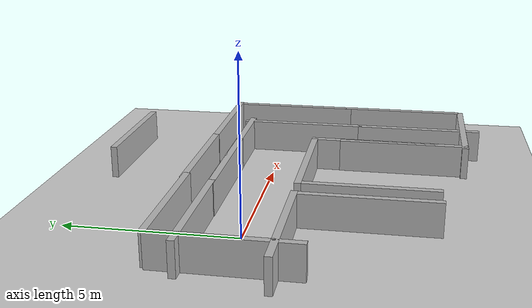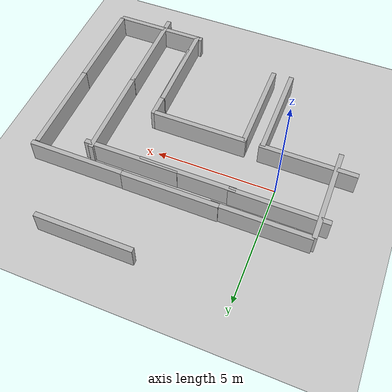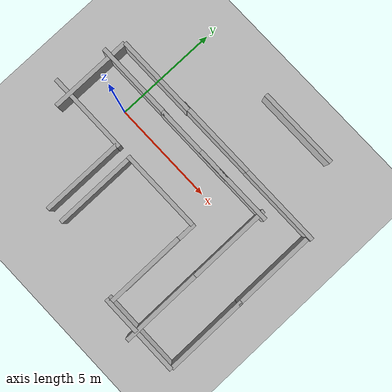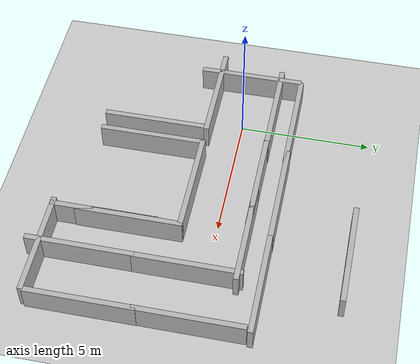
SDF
<sdf version="1.10">
 <world name="demo">
  <plugin name="gz::sim::systems::Physics" filename="gz-sim-physics-system"/>
  <plugin name="gz::sim::systems::Sensors" filename="gz-sim-sensors-system">
   <render_engine>ogre2</render_engine>
  </plugin>
  <plugin name="gz::sim::systems::SceneBroadcaster" filename="gz-sim-scene-broadcaster-system"/>
  <plugin name="gz::sim::systems::UserCommands" filename="gz-sim-user-commands-system"/>
  <gravity>0 0 -9.8000000000000007</gravity>
  <magnetic_field>5.5644999999999998e-06 2.2875799999999999e-05 -4.2388400000000002e-05</magnetic_field>
  <atmosphere type="adiabatic"/>
  <physics type="ode">
   <max_step_size>0.001</max_step_size>
   <real_time_factor>1</real_time_factor>
   <real_time_update_rate>1000</real_time_update_rate>
  </physics>
  <scene>
   <ambient>0.400000006 0.400000006 0.400000006 1</ambient>
   <background>0.699999988 0.699999988 0.699999988 1</background>
   <shadows>true</shadows>
  </scene>
  <model name="ground_plane">
   <static>true</static>
   <link name="link">
    <collision name="collision">
     <geometry><plane><normal>0 0 1</normal><size>100 100</size></plane></geometry>
    </collision>
    <visual name="visual">
     <geometry><plane><normal>0 0 1</normal><size>100 100</size></plane></geometry>
     <material>
      <ambient>0.800000012 0.800000012 0.800000012 1</ambient>
      <diffuse>0.800000012 0.800000012 0.800000012 1</diffuse>
      <specular>0.800000012 0.800000012 0.800000012 1</specular>
     </material>
    </visual>
    <inertial>
     <mass>1</mass>
     <inertia><ixx>1</ixx><ixy>0</ixy><ixz>0</ixz><iyy>1</iyy><iyz>0</iyz><izz>1</izz></inertia>
    </inertial>
   </link>
  </model>
  <model name="wall2">
   <pose>-2 0 0.5 0 0 0</pose>
   <static>true</static>
   <link name="link">
    <visual name="visual"><geometry><box><size>0.20000000000000001 4 1</size></box></geometry></visual>
    <inertial>
     <mass>1</mass>
     <inertia><ixx>1</ixx><ixy>0</ixy><ixz>0</ixz><iyy>1</iyy><iyz>0</iyz><izz>1</izz></inertia>
    </inertial>
   </link>
  </model>
  <model name="wall3">
   <pose>0 2 0.5 0 0 1.5700000000000001</pose>
   <static>true</static>
   <link name="link">
    <visual name="visual"><geometry><box><size>0.20000000000000001 4 1</size></box></geometry></visual>
    <inertial>
     <mass>1</mass>
     <inertia><ixx>1</ixx><ixy>0</ixy><ixz>0</ixz><iyy>1</iyy><iyz>0</iyz><izz>1</izz></inertia>
    </inertial>
   </link>
  </model>
  <model name="wall4_2">
   <pose>3.6406544208767677 2.0264572847186386 0.5 0 0 1.5700000841906609</pose>
   <static>true</static>
   <link name="link">
    <visual name="visual"><geometry><box><size>0.20000000000000001 4 1</size></box></geometry></visual>
    <inertial>
     <mass>1</mass>
     <inertia><ixx>1</ixx><ixy>0</ixy><ixz>0</ixz><iyy>1</iyy><iyz>0</iyz><izz>1</izz></inertia>
    </inertial>
   </link>
  </model>
  <model name="wall2_1">
   <pose>5.7029804680582314 -4.063950813810516 0.5 0 0 0</pose>
   <static>true</static>
   <link name="link">
    <visual name="visual"><geometry><box><size>0.20000000000000001 4 1</size></box></geometry></visual>
    <inertial>
     <mass>1</mass>
     <inertia><ixx>1</ixx><ixy>0</ixy><ixz>0</ixz><iyy>1</iyy><iyz>0</iyz><izz>1</izz></inertia>
    </inertial>
   </link>
  </model>
  <model name="wall4_1_1">
   <pose>7.4734790884814162 -5.9880640611617704 0.5 0 0 1.5700000841906609</pose>
   <static>true</static>
   <link name="link">
    <visual name="visual"><geometry><box><size>0.20000000000000001 4 1</size></box></geometry></visual>
    <inertial>
     <mass>1</mass>
     <inertia><ixx>1</ixx><ixy>0</ixy><ixz>0</ixz><iyy>1</iyy><iyz>0</iyz><izz>1</izz></inertia>
    </inertial>
   </link>
  </model>
  <model name="wall2_1_1">
   <pose>9.4412396376444221 -3.9364481368619058 0.5 0 0 0</pose>
   <static>true</static>
   <link name="link">
    <visual name="visual"><geometry><box><size>0.20000000000000001 4 1</size></box></geometry></visual>
    <inertial>
     <mass>1</mass>
     <inertia><ixx>1</ixx><ixy>0</ixy><ixz>0</ixz><iyy>1</iyy><iyz>0</iyz><izz>1</izz></inertia>
    </inertial>
   </link>
  </model>
  <model name="wall2_1_2">
   <pose>9.4325774543867471 -0.12147621150623943 0.5 0 0 0</pose>
   <static>true</static>
   <link name="link">
    <visual name="visual"><geometry><box><size>0.20000000000000001 4 1</size></box></geometry></visual>
    <inertial>
     <mass>1</mass>
     <inertia><ixx>1</ixx><ixy>0</ixy><ixz>0</ixz><iyy>1</iyy><iyz>0</iyz><izz>1</izz></inertia>
    </inertial>
   </link>
  </model>
  <model name="wall4_2_1">
   <pose>7.6107520477710562 2.0123158791031286 0.5 0 0 1.5700000841906609</pose>
   <static>true</static>
   <link name="link">
    <visual name="visual"><geometry><box><size>0.20000000000000001 4 1</size></box></geometry></visual>
    <inertial>
     <mass>1</mass>
     <inertia><ixx>1</ixx><ixy>0</ixy><ixz>0</ixz><iyy>1</iyy><iyz>0</iyz><izz>1</izz></inertia>
    </inertial>
   </link>
  </model>
  <model name="wall4_2_1_1">
   <pose>5.7984102583563182 4.8713404119806993 0.5 0 0 1.5700000841906609</pose>
   <static>true</static>
   <link name="link">
    <visual name="visual"><geometry><box><size>0.20000000000000001 4 1</size></box></geometry></visual>
    <inertial>
     <mass>1</mass>
     <inertia><ixx>1</ixx><ixy>0</ixy><ixz>0</ixz><iyy>1</iyy><iyz>0</iyz><izz>1</izz></inertia>
    </inertial>
   </link>
  </model>
  <model name="wall2_1_3">
   <pose>5.7274021988212063 -3.1471428291191934 0.5 0 0 0</pose>
   <static>true</static>
   <link name="link">
    <visual name="visual"><geometry><box><size>0.20000000000000001 4 1</size></box></geometry></visual>
    <inertial>
     <mass>1</mass>
     <inertia><ixx>1</ixx><ixy>0</ixy><ixz>0</ixz><iyy>1</iyy><iyz>0</iyz><izz>1</izz></inertia>
    </inertial>
   </link>
  </model>
  <model name="wall4_2_1_2">
   <pose>3.6925893299725834 -1.2362583154717814 0.5 0 0 1.5700000841906609</pose>
   <static>true</static>
   <link name="link">
    <visual name="visual"><geometry><box><size>0.20000000000000001 4 1</size></box></geometry></visual>
    <inertial>
     <mass>1</mass>
     <inertia><ixx>1</ixx><ixy>0</ixy><ixz>0</ixz><iyy>1</iyy><iyz>0</iyz><izz>1</izz></inertia>
    </inertial>
   </link>
  </model>
  <model name="wall4_2_1_2_1">
   <pose>-0.85907874258312988 -1.2337730384040397 0.5 0 0 1.5700000841906609</pose>
   <static>true</static>
   <link name="link">
    <visual name="visual"><geometry><box><size>0.20000000000000001 4 1</size></box></geometry></visual>
    <inertial>
     <mass>1</mass>
     <inertia><ixx>1</ixx><ixy>0</ixy><ixz>0</ixz><iyy>1</iyy><iyz>0</iyz><izz>1</izz></inertia>
    </inertial>
   </link>
  </model>
  <model name="wall2_1_2_1_1_1">
   <pose>1.7944655533479268 -3.2076375586492221 0.5 0 0 0</pose>
   <static>true</static>
   <link name="link">
    <visual name="visual"><geometry><box><size>0.20000000000000001 4 1</size></box></geometry></visual>
    <inertial>
     <mass>1</mass>
     <inertia><ixx>1</ixx><ixy>0</ixy><ixz>0</ixz><iyy>1</iyy><iyz>0</iyz><izz>1</izz></inertia>
    </inertial>
   </link>
  </model>
  <model name="wall2_1_2_1_1_2">
   <pose>1.0140951954750799 -3.2416744642241127 0.5 0 0 0</pose>
   <static>true</static>
   <link name="link">
    <visual name="visual"><geometry><box><size>0.20000000000000001 4 1</size></box></geometry></visual>
    <inertial>
     <mass>1</mass>
     <inertia><ixx>1</ixx><ixy>0</ixy><ixz>0</ixz><iyy>1</iyy><iyz>0</iyz><izz>1</izz></inertia>
    </inertial>
   </link>
  </model>
  <model name="wall3_1">
   <pose>-0.42545012439432517 1.1665967479141159 0.5 0 0 1.5700000841906609</pose>
   <static>true</static>
   <link name="link">
    <visual name="visual"><geometry><box><size>0.20000000000000001 4 1</size></box></geometry></visual>
    <inertial>
     <mass>1</mass>
     <inertia><ixx>1</ixx><ixy>0</ixy><ixz>0</ixz><iyy>1</iyy><iyz>0</iyz><izz>1</izz></inertia>
    </inertial>
   </link>
  </model>
  <model name="wall3_2">
   <pose>3.2806114973699954 1.1477639948831218 0.5 0 0 1.5700000841906609</pose>
   <static>true</static>
   <link name="link">
    <visual name="visual"><geometry><box><size>0.20000000000000001 4 1</size></box></geometry></visual>
    <inertial>
     <mass>1</mass>
     <inertia><ixx>1</ixx><ixy>0</ixy><ixz>0</ixz><iyy>1</iyy><iyz>0</iyz><izz>1</izz></inertia>
    </inertial>
   </link>
  </model>
  <model name="wall3_3">
   <pose>5.6550496737669205 1.1586302299196041 0.5 0 0 1.5700000841906609</pose>
   <static>true</static>
   <link name="link">
    <visual name="visual"><geometry><box><size>0.20000000000000001 4 1</size></box></geometry></visual>
    <inertial>
     <mass>1</mass>
     <inertia><ixx>1</ixx><ixy>0</ixy><ixz>0</ixz><iyy>1</iyy><iyz>0</iyz><izz>1</izz></inertia>
    </inertial>
   </link>
  </model>
  <model name="wall2_1_2_1">
   <pose>7.3320484439815594 -0.63444346838170418 0.5 0 0 0</pose>
   <static>true</static>
   <link name="link">
    <visual name="visual"><geometry><box><size>0.20000000000000001 4 1</size></box></geometry></visual>
    <inertial>
     <mass>1</mass>
     <inertia><ixx>1</ixx><ixy>0</ixy><ixz>0</ixz><iyy>1</iyy><iyz>0</iyz><izz>1</izz></inertia>
    </inertial>
   </link>
  </model>
  <model name="wall2_1_2_2">
   <pose>7.3248804254498374 -4.5268296967271571 0.5 0 0 0</pose>
   <static>true</static>
   <link name="link">
    <visual name="visual"><geometry><box><size>0.20000000000000001 4 1</size></box></geometry></visual>
    <inertial>
     <mass>1</mass>
     <inertia><ixx>1</ixx><ixy>0</ixy><ixz>0</ixz><iyy>1</iyy><iyz>0</iyz><izz>1</izz></inertia>
    </inertial>
   </link>
  </model>
  <light name="sun" type="directional">
   <pose>0 0 10 0 0 0</pose>
   <intensity>1</intensity>
   <direction>-0.5 0.10000000000000001 -0.90000000000000002</direction>
   <diffuse>0.800000012 0.800000012 0.800000012 1</diffuse>
   <specular>0.200000003 0.200000003 0.200000003 1</specular>
   <attenuation>
    <range>1000</range>
    <linear>0.01</linear>
    <constant>0.90000000000000002</constant>
    <quadratic>0.001</quadratic>
   </attenuation>
   <spot><inner_angle>0</inner_angle><outer_angle>0</outer_angle><falloff>0</falloff></spot>
  </light>
 </world>
</sdf>
